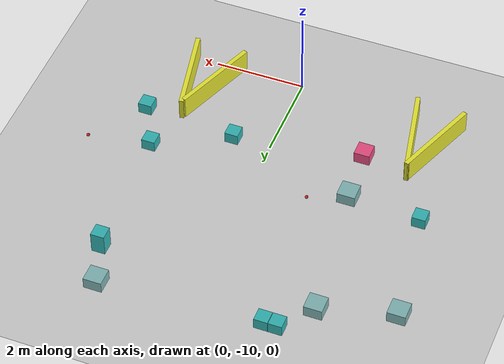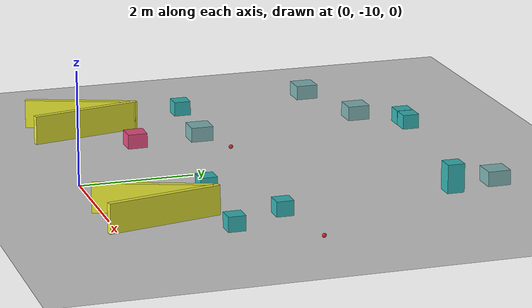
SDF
<sdf version="1.7">
 <world name="default">
  <model name="ground_plane">
   <static>1</static>
   <link name="link">
    <collision name="collision">
     <geometry><plane><normal>0 0 1</normal><size>100 100</size></plane></geometry>
     <surface><friction><ode><mu>100</mu><mu2>50</mu2></ode></friction></surface>
    </collision>
    <visual name="visual">
     <cast_shadows>0</cast_shadows>
     <geometry><plane><normal>0 0 1</normal><size>100 100</size></plane></geometry>
     <material>
      <script><uri>file://media/materials/scripts/gazebo.material</uri><name>Gazebo/Grey</name></script>
     </material>
    </visual>
   </link>
  </model>
  <model name="fl4sr_real_arena_8_target">
   <model name="target_ball_2">
    <link name="link">
     <pose>0 0 0.0375 0 -0 0</pose>
     <inertial>
      <mass>0.1467</mass>
      <inertia>
       <ixx>8.25187e-05</ixx>
       <ixy>0</ixy>
       <ixz>0</ixz>
       <iyy>8.25187e-05</iyy>
       <iyz>0</iyz>
       <izz>8.25187e-05</izz>
      </inertia>
     </inertial>
     <velocity_decay><linear>0</linear><angular>0.005</angular></velocity_decay>
     <visual name="visual">
      <geometry><sphere><radius>0.0375</radius></sphere></geometry>
      <material>
       <script><uri>file://media/materials/scripts/gazebo.material</uri><name>Gazebo/Red</name></script>
       <shader type="pixel"/>
      </material>
     </visual>
     <collision name="collision">
      <geometry><sphere><radius>0.0375</radius></sphere></geometry>
      <surface>
       <friction>
        <ode><mu>1</mu><mu2>1</mu2><fdir1>0 0 0</fdir1><slip1>0</slip1><slip2>0</slip2></ode>
        <torsional>
         <coefficient>1</coefficient>
         <patch_radius>0</patch_radius>
         <surface_radius>0.01</surface_radius>
         <use_patch_radius>0</use_patch_radius>
         <ode><slip>0</slip></ode>
        </torsional>
       </friction>
       <bounce><restitution_coefficient>0</restitution_coefficient><threshold>1e+06</threshold></bounce>
       <contact>
        <collide_without_contact>0</collide_without_contact>
        <collide_without_contact_bitmask>1</collide_without_contact_bitmask>
        <collide_bitmask>1</collide_bitmask>
        <ode>
         <soft_cfm>0</soft_cfm>
         <soft_erp>0.2</soft_erp>
         <kp>100000</kp>
         <kd>100</kd>
         <max_vel>100</max_vel>
         <min_depth>0.001</min_depth>
        </ode>
        <bullet>
         <split_impulse>1</split_impulse>
         <split_impulse_penetration_threshold>-0.01</split_impulse_penetration_threshold>
         <soft_cfm>0</soft_cfm>
         <soft_erp>0.2</soft_erp>
         <kp>100000</kp>
         <kd>100</kd>
        </bullet>
       </contact>
      </surface>
     </collision>
    </link>
    <static>0</static>
    <pose>2.0925 -7.77644 0 0 -0 0</pose>
   </model>
   <model name="target_ball_6">
    <link name="link">
     <pose>0 0 0.0375 0 -0 0</pose>
     <inertial>
      <mass>0.1467</mass>
      <inertia>
       <ixx>8.25187e-05</ixx>
       <ixy>0</ixy>
       <ixz>0</ixz>
       <iyy>8.25187e-05</iyy>
       <iyz>0</iyz>
       <izz>8.25187e-05</izz>
      </inertia>
     </inertial>
     <velocity_decay><linear>0</linear><angular>0.005</angular></velocity_decay>
     <visual name="visual">
      <geometry><sphere><radius>0.0375</radius></sphere></geometry>
      <material>
       <script><uri>file://media/materials/scripts/gazebo.material</uri><name>Gazebo/Red</name></script>
       <shader type="pixel"/>
      </material>
     </visual>
     <collision name="collision">
      <geometry><sphere><radius>0.0375</radius></sphere></geometry>
      <surface>
       <friction>
        <ode><mu>1</mu><mu2>1</mu2><fdir1>0 0 0</fdir1><slip1>0</slip1><slip2>0</slip2></ode>
        <torsional>
         <coefficient>1</coefficient>
         <patch_radius>0</patch_radius>
         <surface_radius>0.01</surface_radius>
         <use_patch_radius>0</use_patch_radius>
         <ode><slip>0</slip></ode>
        </torsional>
       </friction>
       <bounce><restitution_coefficient>0</restitution_coefficient><threshold>1e+06</threshold></bounce>
       <contact>
        <collide_without_contact>0</collide_without_contact>
        <collide_without_contact_bitmask>1</collide_without_contact_bitmask>
        <collide_bitmask>1</collide_bitmask>
        <ode>
         <soft_cfm>0</soft_cfm>
         <soft_erp>0.2</soft_erp>
         <kp>100000</kp>
         <kd>100</kd>
         <max_vel>100</max_vel>
         <min_depth>0.001</min_depth>
        </ode>
        <bullet>
         <split_impulse>1</split_impulse>
         <split_impulse_penetration_threshold>-0.01</split_impulse_penetration_threshold>
         <soft_cfm>0</soft_cfm>
         <soft_erp>0.2</soft_erp>
         <kp>100000</kp>
         <kd>100</kd>
        </bullet>
       </contact>
      </surface>
     </collision>
    </link>
    <static>0</static>
    <pose>-2.94744 -7.77192 0 0 -0 0</pose>
   </model>
   <static>0</static>
   <pose>1.69407 0.837479 0 0 -0 0</pose>
  </model>
  <model name="unit_box_0.4">
   <link name="link">
    <inertial>
     <mass>1</mass>
     <inertia>
      <ixx>0.166667</ixx>
      <ixy>0</ixy>
      <ixz>0</ixz>
      <iyy>0.166667</iyy>
      <iyz>0</iyz>
      <izz>0.166667</izz>
     </inertia>
    </inertial>
    <visual name="visual">
     <geometry><box><size>0.4 0.4 0.5</size></box></geometry>
     <material>
      <script><name>Gazebo/Grey</name><uri>file://media/materials/scripts/gazebo.material</uri></script>
      <shader type="pixel"><normal_map>__default__</normal_map></shader>
      <ambient>0.7 0.8 0.4 1</ambient>
      <diffuse>0.5 0.7 0.7 1</diffuse>
      <specular>0.01 0.01 0.01 1</specular>
      <emissive>0 0 0 1</emissive>
     </material>
    </visual>
    <collision name="collision">
     <geometry><box><size>0.4 0.4 0.5</size></box></geometry>
     <surface>
      <friction>
       <ode><mu>1</mu><mu2>1</mu2><fdir1>0 0 0</fdir1><slip1>0</slip1><slip2>0</slip2></ode>
       <torsional>
        <coefficient>1</coefficient>
        <patch_radius>0</patch_radius>
        <surface_radius>0</surface_radius>
        <use_patch_radius>1</use_patch_radius>
        <ode><slip>0</slip></ode>
       </torsional>
      </friction>
      <bounce><restitution_coefficient>0</restitution_coefficient><threshold>1e+06</threshold></bounce>
      <contact>
       <collide_without_contact>0</collide_without_contact>
       <collide_without_contact_bitmask>1</collide_without_contact_bitmask>
       <collide_bitmask>1</collide_bitmask>
       <ode>
        <soft_cfm>0</soft_cfm>
        <soft_erp>0.2</soft_erp>
        <kp>1e+13</kp>
        <kd>1</kd>
        <max_vel>0.01</max_vel>
        <min_depth>0</min_depth>
       </ode>
       <bullet>
        <split_impulse>1</split_impulse>
        <split_impulse_penetration_threshold>-0.01</split_impulse_penetration_threshold>
        <soft_cfm>0</soft_cfm>
        <soft_erp>0.2</soft_erp>
        <kp>1e+13</kp>
        <kd>1</kd>
       </bullet>
      </contact>
     </surface>
    </collision>
   </link>
   <static>0</static>
   <pose>1.92446 -3.23435 0 0 -0 0</pose>
  </model>
  <model name="unit_box_0.3">
   <link name="link">
    <inertial>
     <mass>1</mass>
     <inertia>
      <ixx>0.166667</ixx>
      <ixy>0</ixy>
      <ixz>0</ixz>
      <iyy>0.166667</iyy>
      <iyz>0</iyz>
      <izz>0.166667</izz>
     </inertia>
    </inertial>
    <visual name="visual">
     <geometry><box><size>0.3 0.3 0.5</size></box></geometry>
     <material>
      <script><name>Gazebo/Grey</name><uri>file://media/materials/scripts/gazebo.material</uri></script>
      <shader type="pixel"><normal_map>__default__</normal_map></shader>
      <ambient>0.2 0.7 0.7 1</ambient>
      <diffuse>0.7 0.7 0.7 1</diffuse>
      <specular>0.01 0.01 0.01 1</specular>
      <emissive>0 0 0 1</emissive>
     </material>
    </visual>
    <collision name="collision">
     <geometry><box><size>0.3 0.3 0.5</size></box></geometry>
     <surface>
      <friction>
       <ode><mu>1</mu><mu2>1</mu2><fdir1>0 0 0</fdir1><slip1>0</slip1><slip2>0</slip2></ode>
       <torsional>
        <coefficient>1</coefficient>
        <patch_radius>0</patch_radius>
        <surface_radius>0</surface_radius>
        <use_patch_radius>1</use_patch_radius>
        <ode><slip>0</slip></ode>
       </torsional>
      </friction>
      <bounce><restitution_coefficient>0</restitution_coefficient><threshold>1e+06</threshold></bounce>
      <contact>
       <collide_without_contact>0</collide_without_contact>
       <collide_without_contact_bitmask>1</collide_without_contact_bitmask>
       <collide_bitmask>1</collide_bitmask>
       <ode>
        <soft_cfm>0</soft_cfm>
        <soft_erp>0.2</soft_erp>
        <kp>1e+13</kp>
        <kd>1</kd>
        <max_vel>0.01</max_vel>
        <min_depth>0</min_depth>
       </ode>
       <bullet>
        <split_impulse>1</split_impulse>
        <split_impulse_penetration_threshold>-0.01</split_impulse_penetration_threshold>
        <soft_cfm>0</soft_cfm>
        <soft_erp>0.2</soft_erp>
        <kp>1e+13</kp>
        <kd>1</kd>
       </bullet>
      </contact>
     </surface>
    </collision>
   </link>
   <static>0</static>
   <pose>2.21344 -4.12023 0.271339 0 -0 0</pose>
  </model>
  <model name="wooden_wall_2">
   <link name="link_1">
    <inertial>
     <mass>1</mass>
     <inertia>
      <ixx>0.166667</ixx>
      <ixy>0</ixy>
      <ixz>0</ixz>
      <iyy>0.166667</iyy>
      <iyz>0</iyz>
      <izz>0.166667</izz>
     </inertia>
    </inertial>
    <visual name="visual">
     <geometry><box><size>2 0.1 1</size></box></geometry>
     <material>
      <lighting>1</lighting>
      <script><uri>file://media/materials/scripts/gazebo.material</uri><name>Gazebo/Grey</name></script>
      <shader type="pixel"><normal_map>__default__</normal_map></shader>
      <ambient>0.9 0.9 0.2 1</ambient>
      <diffuse>0.7 0.7 0.7 1</diffuse>
      <specular>0.01 0.01 0.01 1</specular>
      <emissive>0 0 0 1</emissive>
     </material>
    </visual>
    <collision name="collision">
     <geometry><box><size>2 0.1 1</size></box></geometry>
     <surface>
      <friction>
       <ode><mu>1</mu><mu2>1</mu2><fdir1>0 0 0</fdir1><slip1>0</slip1><slip2>0</slip2></ode>
       <torsional>
        <coefficient>1</coefficient>
        <patch_radius>0</patch_radius>
        <surface_radius>0</surface_radius>
        <use_patch_radius>1</use_patch_radius>
        <ode><slip>0</slip></ode>
       </torsional>
      </friction>
      <bounce><restitution_coefficient>0</restitution_coefficient><threshold>1e+06</threshold></bounce>
      <contact>
       <collide_without_contact>0</collide_without_contact>
       <collide_without_contact_bitmask>1</collide_without_contact_bitmask>
       <collide_bitmask>1</collide_bitmask>
       <ode>
        <soft_cfm>0</soft_cfm>
        <soft_erp>0.2</soft_erp>
        <kp>1e+13</kp>
        <kd>1</kd>
        <max_vel>0.01</max_vel>
        <min_depth>0</min_depth>
       </ode>
       <bullet>
        <split_impulse>1</split_impulse>
        <split_impulse_penetration_threshold>-0.01</split_impulse_penetration_threshold>
        <soft_cfm>0</soft_cfm>
        <soft_erp>0.2</soft_erp>
        <kp>1e+13</kp>
        <kd>1</kd>
       </bullet>
      </contact>
     </surface>
    </collision>
   </link>
   <static>0</static>
   <pose>1.74578 -9.1937 0 0 -0 1.21273</pose>
  </model>
  <model name="wooden_wall_2_clone">
   <link name="link_1">
    <inertial>
     <mass>1</mass>
     <inertia>
      <ixx>0.166667</ixx>
      <ixy>0</ixy>
      <ixz>0</ixz>
      <iyy>0.166667</iyy>
      <iyz>0</iyz>
      <izz>0.166667</izz>
     </inertia>
    </inertial>
    <visual name="visual">
     <geometry><box><size>2 0.1 1</size></box></geometry>
     <material>
      <lighting>1</lighting>
      <script><uri>file://media/materials/scripts/gazebo.material</uri><name>Gazebo/Grey</name></script>
      <shader type="pixel"><normal_map>__default__</normal_map></shader>
      <ambient>0.9 0.9 0.2 1</ambient>
      <diffuse>0.7 0.7 0.7 1</diffuse>
      <specular>0.01 0.01 0.01 1</specular>
      <emissive>0 0 0 1</emissive>
     </material>
    </visual>
    <collision name="collision">
     <geometry><box><size>2 0.1 1</size></box></geometry>
     <surface>
      <friction>
       <ode><mu>1</mu><mu2>1</mu2><fdir1>0 0 0</fdir1><slip1>0</slip1><slip2>0</slip2></ode>
       <torsional>
        <coefficient>1</coefficient>
        <patch_radius>0</patch_radius>
        <surface_radius>0</surface_radius>
        <use_patch_radius>1</use_patch_radius>
        <ode><slip>0</slip></ode>
       </torsional>
      </friction>
      <bounce><restitution_coefficient>0</restitution_coefficient><threshold>1e+06</threshold></bounce>
      <contact>
       <collide_without_contact>0</collide_without_contact>
       <collide_without_contact_bitmask>1</collide_without_contact_bitmask>
       <collide_bitmask>1</collide_bitmask>
       <ode>
        <soft_cfm>0</soft_cfm>
        <soft_erp>0.2</soft_erp>
        <kp>1e+13</kp>
        <kd>1</kd>
        <max_vel>0.01</max_vel>
        <min_depth>0</min_depth>
       </ode>
       <bullet>
        <split_impulse>1</split_impulse>
        <split_impulse_penetration_threshold>-0.01</split_impulse_penetration_threshold>
        <soft_cfm>0</soft_cfm>
        <soft_erp>0.2</soft_erp>
        <kp>1e+13</kp>
        <kd>1</kd>
       </bullet>
      </contact>
     </surface>
    </collision>
   </link>
   <static>0</static>
   <pose>2.3246 -9.15815 0 0 -0 1.77834</pose>
  </model>
  <model name="wooden_wall_2_clone_0">
   <link name="link_1">
    <inertial>
     <mass>1</mass>
     <inertia>
      <ixx>0.166667</ixx>
      <ixy>0</ixy>
      <ixz>0</ixz>
      <iyy>0.166667</iyy>
      <iyz>0</iyz>
      <izz>0.166667</izz>
     </inertia>
    </inertial>
    <visual name="visual">
     <geometry><box><size>2 0.1 1</size></box></geometry>
     <material>
      <lighting>1</lighting>
      <script><uri>file://media/materials/scripts/gazebo.material</uri><name>Gazebo/Grey</name></script>
      <shader type="pixel"><normal_map>__default__</normal_map></shader>
      <ambient>0.9 0.9 0.2 1</ambient>
      <diffuse>0.7 0.7 0.7 1</diffuse>
      <specular>0.01 0.01 0.01 1</specular>
      <emissive>0 0 0 1</emissive>
     </material>
    </visual>
    <collision name="collision">
     <geometry><box><size>2 0.1 1</size></box></geometry>
     <surface>
      <friction>
       <ode><mu>1</mu><mu2>1</mu2><fdir1>0 0 0</fdir1><slip1>0</slip1><slip2>0</slip2></ode>
       <torsional>
        <coefficient>1</coefficient>
        <patch_radius>0</patch_radius>
        <surface_radius>0</surface_radius>
        <use_patch_radius>1</use_patch_radius>
        <ode><slip>0</slip></ode>
       </torsional>
      </friction>
      <bounce><restitution_coefficient>0</restitution_coefficient><threshold>1e+06</threshold></bounce>
      <contact>
       <collide_without_contact>0</collide_without_contact>
       <collide_without_contact_bitmask>1</collide_without_contact_bitmask>
       <collide_bitmask>1</collide_bitmask>
       <ode>
        <soft_cfm>0</soft_cfm>
        <soft_erp>0.2</soft_erp>
        <kp>1e+13</kp>
        <kd>1</kd>
        <max_vel>0.01</max_vel>
        <min_depth>0</min_depth>
       </ode>
       <bullet>
        <split_impulse>1</split_impulse>
        <split_impulse_penetration_threshold>-0.01</split_impulse_penetration_threshold>
        <soft_cfm>0</soft_cfm>
        <soft_erp>0.2</soft_erp>
        <kp>1e+13</kp>
        <kd>1</kd>
       </bullet>
      </contact>
     </surface>
    </collision>
   </link>
   <static>0</static>
   <pose>-3.36404 -9.13299 0 0 -0 1.21273</pose>
  </model>
  <model name="wooden_wall_2_clone_clone">
   <link name="link_1">
    <inertial>
     <mass>1</mass>
     <inertia>
      <ixx>0.166667</ixx>
      <ixy>0</ixy>
      <ixz>0</ixz>
      <iyy>0.166667</iyy>
      <iyz>0</iyz>
      <izz>0.166667</izz>
     </inertia>
    </inertial>
    <visual name="visual">
     <geometry><box><size>2 0.1 1</size></box></geometry>
     <material>
      <lighting>1</lighting>
      <script><uri>file://media/materials/scripts/gazebo.material</uri><name>Gazebo/Grey</name></script>
      <shader type="pixel"><normal_map>__default__</normal_map></shader>
      <ambient>0.9 0.9 0.2 1</ambient>
      <diffuse>0.7 0.7 0.7 1</diffuse>
      <specular>0.01 0.01 0.01 1</specular>
      <emissive>0 0 0 1</emissive>
     </material>
    </visual>
    <collision name="collision">
     <geometry><box><size>2 0.1 1</size></box></geometry>
     <surface>
      <friction>
       <ode><mu>1</mu><mu2>1</mu2><fdir1>0 0 0</fdir1><slip1>0</slip1><slip2>0</slip2></ode>
       <torsional>
        <coefficient>1</coefficient>
        <patch_radius>0</patch_radius>
        <surface_radius>0</surface_radius>
        <use_patch_radius>1</use_patch_radius>
        <ode><slip>0</slip></ode>
       </torsional>
      </friction>
      <bounce><restitution_coefficient>0</restitution_coefficient><threshold>1e+06</threshold></bounce>
      <contact>
       <collide_without_contact>0</collide_without_contact>
       <collide_without_contact_bitmask>1</collide_without_contact_bitmask>
       <collide_bitmask>1</collide_bitmask>
       <ode>
        <soft_cfm>0</soft_cfm>
        <soft_erp>0.2</soft_erp>
        <kp>1e+13</kp>
        <kd>1</kd>
        <max_vel>0.01</max_vel>
        <min_depth>0</min_depth>
       </ode>
       <bullet>
        <split_impulse>1</split_impulse>
        <split_impulse_penetration_threshold>-0.01</split_impulse_penetration_threshold>
        <soft_cfm>0</soft_cfm>
        <soft_erp>0.2</soft_erp>
        <kp>1e+13</kp>
        <kd>1</kd>
       </bullet>
      </contact>
     </surface>
    </collision>
   </link>
   <static>0</static>
   <pose>-2.82757 -9.16398 0 0 -0 1.77834</pose>
  </model>
  <model name="unit_box_0.3_0_clone">
   <link name="link">
    <inertial>
     <mass>1</mass>
     <inertia>
      <ixx>0.166667</ixx>
      <ixy>0</ixy>
      <ixz>0</ixz>
      <iyy>0.166667</iyy>
      <iyz>0</iyz>
      <izz>0.166667</izz>
     </inertia>
    </inertial>
    <visual name="visual">
     <geometry><box><size>0.3 0.3 0.5</size></box></geometry>
     <material>
      <script><name>Gazebo/Grey</name><uri>file://media/materials/scripts/gazebo.material</uri></script>
      <shader type="pixel"><normal_map>__default__</normal_map></shader>
      <ambient>0.2 0.7 0.7 1</ambient>
      <diffuse>0.7 0.7 0.7 1</diffuse>
      <specular>0.01 0.01 0.01 1</specular>
      <emissive>0 0 0 1</emissive>
     </material>
    </visual>
    <collision name="collision">
     <geometry><box><size>0.3 0.3 0.5</size></box></geometry>
     <surface>
      <friction>
       <ode><mu>1</mu><mu2>1</mu2><fdir1>0 0 0</fdir1><slip1>0</slip1><slip2>0</slip2></ode>
       <torsional>
        <coefficient>1</coefficient>
        <patch_radius>0</patch_radius>
        <surface_radius>0</surface_radius>
        <use_patch_radius>1</use_patch_radius>
        <ode><slip>0</slip></ode>
       </torsional>
      </friction>
      <bounce><restitution_coefficient>0</restitution_coefficient><threshold>1e+06</threshold></bounce>
      <contact>
       <collide_without_contact>0</collide_without_contact>
       <collide_without_contact_bitmask>1</collide_without_contact_bitmask>
       <collide_bitmask>1</collide_bitmask>
       <ode>
        <soft_cfm>0</soft_cfm>
        <soft_erp>0.2</soft_erp>
        <kp>1e+13</kp>
        <kd>1</kd>
        <max_vel>0.01</max_vel>
        <min_depth>0</min_depth>
       </ode>
       <bullet>
        <split_impulse>1</split_impulse>
        <split_impulse_penetration_threshold>-0.01</split_impulse_penetration_threshold>
        <soft_cfm>0</soft_cfm>
        <soft_erp>0.2</soft_erp>
        <kp>1e+13</kp>
        <kd>1</kd>
       </bullet>
      </contact>
     </surface>
    </collision>
   </link>
   <static>0</static>
   <pose>-3.69696 -7.15807 0 0 -0 0</pose>
  </model>
  <model name="unit_box_0.4_clone">
   <link name="link">
    <inertial>
     <mass>1</mass>
     <inertia>
      <ixx>0.166667</ixx>
      <ixy>0</ixy>
      <ixz>0</ixz>
      <iyy>0.166667</iyy>
      <iyz>0</iyz>
      <izz>0.166667</izz>
     </inertia>
    </inertial>
    <visual name="visual">
     <geometry><box><size>0.4 0.4 0.5</size></box></geometry>
     <material>
      <script><name>Gazebo/Grey</name><uri>file://media/materials/scripts/gazebo.material</uri></script>
      <shader type="pixel"><normal_map>__default__</normal_map></shader>
      <ambient>0.7 0.8 0.4 1</ambient>
      <diffuse>0.5 0.7 0.7 1</diffuse>
      <specular>0.01 0.01 0.01 1</specular>
      <emissive>0 0 0 1</emissive>
     </material>
    </visual>
    <collision name="collision">
     <geometry><box><size>0.4 0.4 0.5</size></box></geometry>
     <surface>
      <friction>
       <ode><mu>1</mu><mu2>1</mu2><fdir1>0 0 0</fdir1><slip1>0</slip1><slip2>0</slip2></ode>
       <torsional>
        <coefficient>1</coefficient>
        <patch_radius>0</patch_radius>
        <surface_radius>0</surface_radius>
        <use_patch_radius>1</use_patch_radius>
        <ode><slip>0</slip></ode>
       </torsional>
      </friction>
      <bounce><restitution_coefficient>0</restitution_coefficient><threshold>1e+06</threshold></bounce>
      <contact>
       <collide_without_contact>0</collide_without_contact>
       <collide_without_contact_bitmask>1</collide_without_contact_bitmask>
       <collide_bitmask>1</collide_bitmask>
       <ode>
        <soft_cfm>0</soft_cfm>
        <soft_erp>0.2</soft_erp>
        <kp>1e+13</kp>
        <kd>1</kd>
        <max_vel>0.01</max_vel>
        <min_depth>0</min_depth>
       </ode>
       <bullet>
        <split_impulse>1</split_impulse>
        <split_impulse_penetration_threshold>-0.01</split_impulse_penetration_threshold>
        <soft_cfm>0</soft_cfm>
        <soft_erp>0.2</soft_erp>
        <kp>1e+13</kp>
        <kd>1</kd>
       </bullet>
      </contact>
     </surface>
    </collision>
   </link>
   <static>0</static>
   <pose>-2.06862 -7.27292 0 0 -0 0</pose>
  </model>
  <model name="unit_box_0.35_clone">
   <link name="link">
    <inertial>
     <mass>1</mass>
     <inertia>
      <ixx>0.166667</ixx>
      <ixy>0</ixy>
      <ixz>0</ixz>
      <iyy>0.166667</iyy>
      <iyz>0</iyz>
      <izz>0.166667</izz>
     </inertia>
    </inertial>
    <visual name="visual">
     <geometry><box><size>0.35 0.35 0.5</size></box></geometry>
     <material>
      <script><name>Gazebo/Grey</name><uri>file://media/materials/scripts/gazebo.material</uri></script>
      <shader type="pixel"><normal_map>__default__</normal_map></shader>
      <ambient>0.9 0.3 0.5 1</ambient>
      <diffuse>0.7 0.7 0.7 1</diffuse>
      <specular>0.01 0.01 0.01 1</specular>
      <emissive>0 0 0 1</emissive>
     </material>
    </visual>
    <collision name="collision">
     <geometry><box><size>0.35 0.35 0.5</size></box></geometry>
     <surface>
      <friction>
       <ode><mu>1</mu><mu2>1</mu2><fdir1>0 0 0</fdir1><slip1>0</slip1><slip2>0</slip2></ode>
       <torsional>
        <coefficient>1</coefficient>
        <patch_radius>0</patch_radius>
        <surface_radius>0</surface_radius>
        <use_patch_radius>1</use_patch_radius>
        <ode><slip>0</slip></ode>
       </torsional>
      </friction>
      <bounce><restitution_coefficient>0</restitution_coefficient><threshold>1e+06</threshold></bounce>
      <contact>
       <collide_without_contact>0</collide_without_contact>
       <collide_without_contact_bitmask>1</collide_without_contact_bitmask>
       <collide_bitmask>1</collide_bitmask>
       <ode>
        <soft_cfm>0</soft_cfm>
        <soft_erp>0.2</soft_erp>
        <kp>1e+13</kp>
        <kd>1</kd>
        <max_vel>0.01</max_vel>
        <min_depth>0</min_depth>
       </ode>
       <bullet>
        <split_impulse>1</split_impulse>
        <split_impulse_penetration_threshold>-0.01</split_impulse_penetration_threshold>
        <soft_cfm>0</soft_cfm>
        <soft_erp>0.2</soft_erp>
        <kp>1e+13</kp>
        <kd>1</kd>
       </bullet>
      </contact>
     </surface>
    </collision>
   </link>
   <static>0</static>
   <pose>-1.98306 -8.48224 0 0 -0 0</pose>
  </model>
  <model name="unit_box_0.4_clone_3_clone">
   <link name="link">
    <inertial>
     <mass>1</mass>
     <inertia>
      <ixx>0.166667</ixx>
      <ixy>0</ixy>
      <ixz>0</ixz>
      <iyy>0.166667</iyy>
      <iyz>0</iyz>
      <izz>0.166667</izz>
     </inertia>
    </inertial>
    <visual name="visual">
     <geometry><box><size>0.4 0.4 0.5</size></box></geometry>
     <material>
      <script><name>Gazebo/Grey</name><uri>file://media/materials/scripts/gazebo.material</uri></script>
      <shader type="pixel"><normal_map>__default__</normal_map></shader>
      <ambient>0.7 0.8 0.4 1</ambient>
      <diffuse>0.5 0.7 0.7 1</diffuse>
      <specular>0.01 0.01 0.01 1</specular>
      <emissive>0 0 0 1</emissive>
     </material>
    </visual>
    <collision name="collision">
     <geometry><box><size>0.4 0.4 0.5</size></box></geometry>
     <surface>
      <friction>
       <ode><mu>1</mu><mu2>1</mu2><fdir1>0 0 0</fdir1><slip1>0</slip1><slip2>0</slip2></ode>
       <torsional>
        <coefficient>1</coefficient>
        <patch_radius>0</patch_radius>
        <surface_radius>0</surface_radius>
        <use_patch_radius>1</use_patch_radius>
        <ode><slip>0</slip></ode>
       </torsional>
      </friction>
      <bounce><restitution_coefficient>0</restitution_coefficient><threshold>1e+06</threshold></bounce>
      <contact>
       <collide_without_contact>0</collide_without_contact>
       <collide_without_contact_bitmask>1</collide_without_contact_bitmask>
       <collide_bitmask>1</collide_bitmask>
       <ode>
        <soft_cfm>0</soft_cfm>
        <soft_erp>0.2</soft_erp>
        <kp>1e+13</kp>
        <kd>1</kd>
        <max_vel>0.01</max_vel>
        <min_depth>0</min_depth>
       </ode>
       <bullet>
        <split_impulse>1</split_impulse>
        <split_impulse_penetration_threshold>-0.01</split_impulse_penetration_threshold>
        <soft_cfm>0</soft_cfm>
        <soft_erp>0.2</soft_erp>
        <kp>1e+13</kp>
        <kd>1</kd>
       </bullet>
      </contact>
     </surface>
    </collision>
   </link>
   <static>0</static>
   <pose>-2.49257 -4.15986 0 0 -0 0</pose>
  </model>
  <model name="unit_box_0.4_clone_3_clone_0">
   <link name="link">
    <inertial>
     <mass>1</mass>
     <inertia>
      <ixx>0.166667</ixx>
      <ixy>0</ixy>
      <ixz>0</ixz>
      <iyy>0.166667</iyy>
      <iyz>0</iyz>
      <izz>0.166667</izz>
     </inertia>
    </inertial>
    <visual name="visual">
     <geometry><box><size>0.4 0.4 0.5</size></box></geometry>
     <material>
      <script><name>Gazebo/Grey</name><uri>file://media/materials/scripts/gazebo.material</uri></script>
      <shader type="pixel"><normal_map>__default__</normal_map></shader>
      <ambient>0.7 0.8 0.4 1</ambient>
      <diffuse>0.5 0.7 0.7 1</diffuse>
      <specular>0.01 0.01 0.01 1</specular>
      <emissive>0 0 0 1</emissive>
     </material>
    </visual>
    <collision name="collision">
     <geometry><box><size>0.4 0.4 0.5</size></box></geometry>
     <surface>
      <friction>
       <ode><mu>1</mu><mu2>1</mu2><fdir1>0 0 0</fdir1><slip1>0</slip1><slip2>0</slip2></ode>
       <torsional>
        <coefficient>1</coefficient>
        <patch_radius>0</patch_radius>
        <surface_radius>0</surface_radius>
        <use_patch_radius>1</use_patch_radius>
        <ode><slip>0</slip></ode>
       </torsional>
      </friction>
      <bounce><restitution_coefficient>0</restitution_coefficient><threshold>1e+06</threshold></bounce>
      <contact>
       <collide_without_contact>0</collide_without_contact>
       <collide_without_contact_bitmask>1</collide_without_contact_bitmask>
       <collide_bitmask>1</collide_bitmask>
       <ode>
        <soft_cfm>0</soft_cfm>
        <soft_erp>0.2</soft_erp>
        <kp>1e+13</kp>
        <kd>1</kd>
        <max_vel>0.01</max_vel>
        <min_depth>0</min_depth>
       </ode>
       <bullet>
        <split_impulse>1</split_impulse>
        <split_impulse_penetration_threshold>-0.01</split_impulse_penetration_threshold>
        <soft_cfm>0</soft_cfm>
        <soft_erp>0.2</soft_erp>
        <kp>1e+13</kp>
        <kd>1</kd>
       </bullet>
      </contact>
     </surface>
    </collision>
   </link>
   <static>0</static>
   <pose>-4.09964 -4.61907 0 0 -0 0</pose>
  </model>
  <model name="unit_box_0.3_1_clone_clone_0_clone">
   <link name="link">
    <inertial>
     <mass>1</mass>
     <inertia>
      <ixx>0.166667</ixx>
      <ixy>0</ixy>
      <ixz>0</ixz>
      <iyy>0.166667</iyy>
      <iyz>0</iyz>
      <izz>0.166667</izz>
     </inertia>
    </inertial>
    <visual name="visual">
     <geometry><box><size>0.3 0.3 0.5</size></box></geometry>
     <material>
      <script><name>Gazebo/Grey</name><uri>file://media/materials/scripts/gazebo.material</uri></script>
      <shader type="pixel"><normal_map>__default__</normal_map></shader>
      <ambient>0.2 0.7 0.7 1</ambient>
      <diffuse>0.7 0.7 0.7 1</diffuse>
      <specular>0.01 0.01 0.01 1</specular>
      <emissive>0 0 0 1</emissive>
     </material>
    </visual>
    <collision name="collision">
     <geometry><box><size>0.3 0.3 0.5</size></box></geometry>
     <surface>
      <friction>
       <ode><mu>1</mu><mu2>1</mu2><fdir1>0 0 0</fdir1><slip1>0</slip1><slip2>0</slip2></ode>
       <torsional>
        <coefficient>1</coefficient>
        <patch_radius>0</patch_radius>
        <surface_radius>0</surface_radius>
        <use_patch_radius>1</use_patch_radius>
        <ode><slip>0</slip></ode>
       </torsional>
      </friction>
      <bounce><restitution_coefficient>0</restitution_coefficient><threshold>1e+06</threshold></bounce>
      <contact>
       <collide_without_contact>0</collide_without_contact>
       <collide_without_contact_bitmask>1</collide_without_contact_bitmask>
       <collide_bitmask>1</collide_bitmask>
       <ode>
        <soft_cfm>0</soft_cfm>
        <soft_erp>0.2</soft_erp>
        <kp>1e+13</kp>
        <kd>1</kd>
        <max_vel>0.01</max_vel>
        <min_depth>0</min_depth>
       </ode>
       <bullet>
        <split_impulse>1</split_impulse>
        <split_impulse_penetration_threshold>-0.01</split_impulse_penetration_threshold>
        <soft_cfm>0</soft_cfm>
        <soft_erp>0.2</soft_erp>
        <kp>1e+13</kp>
        <kd>1</kd>
       </bullet>
      </contact>
     </surface>
    </collision>
   </link>
   <static>0</static>
   <pose>-1.93774 -3.45205 0 0 -0 0</pose>
  </model>
  <model name="unit_box_0.3_1_clone_clone_0_clone_0">
   <link name="link">
    <inertial>
     <mass>1</mass>
     <inertia>
      <ixx>0.166667</ixx>
      <ixy>0</ixy>
      <ixz>0</ixz>
      <iyy>0.166667</iyy>
      <iyz>0</iyz>
      <izz>0.166667</izz>
     </inertia>
    </inertial>
    <visual name="visual">
     <geometry><box><size>0.3 0.3 0.5</size></box></geometry>
     <material>
      <script><name>Gazebo/Grey</name><uri>file://media/materials/scripts/gazebo.material</uri></script>
      <shader type="pixel"><normal_map>__default__</normal_map></shader>
      <ambient>0.2 0.7 0.7 1</ambient>
      <diffuse>0.7 0.7 0.7 1</diffuse>
      <specular>0.01 0.01 0.01 1</specular>
      <emissive>0 0 0 1</emissive>
     </material>
    </visual>
    <collision name="collision">
     <geometry><box><size>0.3 0.3 0.5</size></box></geometry>
     <surface>
      <friction>
       <ode><mu>1</mu><mu2>1</mu2><fdir1>0 0 0</fdir1><slip1>0</slip1><slip2>0</slip2></ode>
       <torsional>
        <coefficient>1</coefficient>
        <patch_radius>0</patch_radius>
        <surface_radius>0</surface_radius>
        <use_patch_radius>1</use_patch_radius>
        <ode><slip>0</slip></ode>
       </torsional>
      </friction>
      <bounce><restitution_coefficient>0</restitution_coefficient><threshold>1e+06</threshold></bounce>
      <contact>
       <collide_without_contact>0</collide_without_contact>
       <collide_without_contact_bitmask>1</collide_without_contact_bitmask>
       <collide_bitmask>1</collide_bitmask>
       <ode>
        <soft_cfm>0</soft_cfm>
        <soft_erp>0.2</soft_erp>
        <kp>1e+13</kp>
        <kd>1</kd>
        <max_vel>0.01</max_vel>
        <min_depth>0</min_depth>
       </ode>
       <bullet>
        <split_impulse>1</split_impulse>
        <split_impulse_penetration_threshold>-0.01</split_impulse_penetration_threshold>
        <soft_cfm>0</soft_cfm>
        <soft_erp>0.2</soft_erp>
        <kp>1e+13</kp>
        <kd>1</kd>
       </bullet>
      </contact>
     </surface>
    </collision>
   </link>
   <static>0</static>
   <pose>-1.63163 -3.45205 0 0 -0 0</pose>
  </model>
  <model name="unit_box_0.3_1_clone_clone_0_clone_1">
   <link name="link">
    <inertial>
     <mass>1</mass>
     <inertia>
      <ixx>0.166667</ixx>
      <ixy>0</ixy>
      <ixz>0</ixz>
      <iyy>0.166667</iyy>
      <iyz>0</iyz>
      <izz>0.166667</izz>
     </inertia>
    </inertial>
    <visual name="visual">
     <geometry><box><size>0.3 0.3 0.5</size></box></geometry>
     <material>
      <script><name>Gazebo/Grey</name><uri>file://media/materials/scripts/gazebo.material</uri></script>
      <shader type="pixel"><normal_map>__default__</normal_map></shader>
      <ambient>0.2 0.7 0.7 1</ambient>
      <diffuse>0.7 0.7 0.7 1</diffuse>
      <specular>0.01 0.01 0.01 1</specular>
      <emissive>0 0 0 1</emissive>
     </material>
    </visual>
    <collision name="collision">
     <geometry><box><size>0.3 0.3 0.5</size></box></geometry>
     <surface>
      <friction>
       <ode><mu>1</mu><mu2>1</mu2><fdir1>0 0 0</fdir1><slip1>0</slip1><slip2>0</slip2></ode>
       <torsional>
        <coefficient>1</coefficient>
        <patch_radius>0</patch_radius>
        <surface_radius>0</surface_radius>
        <use_patch_radius>1</use_patch_radius>
        <ode><slip>0</slip></ode>
       </torsional>
      </friction>
      <bounce><restitution_coefficient>0</restitution_coefficient><threshold>1e+06</threshold></bounce>
      <contact>
       <collide_without_contact>0</collide_without_contact>
       <collide_without_contact_bitmask>1</collide_without_contact_bitmask>
       <collide_bitmask>1</collide_bitmask>
       <ode>
        <soft_cfm>0</soft_cfm>
        <soft_erp>0.2</soft_erp>
        <kp>1e+13</kp>
        <kd>1</kd>
        <max_vel>0.01</max_vel>
        <min_depth>0</min_depth>
       </ode>
       <bullet>
        <split_impulse>1</split_impulse>
        <split_impulse_penetration_threshold>-0.01</split_impulse_penetration_threshold>
        <soft_cfm>0</soft_cfm>
        <soft_erp>0.2</soft_erp>
        <kp>1e+13</kp>
        <kd>1</kd>
       </bullet>
      </contact>
     </surface>
    </collision>
   </link>
   <static>0</static>
   <pose>0.832713 -8.00783 0 0 -0 0</pose>
  </model>
  <model name="unit_box_0.3_1_clone_clone_0_clone_2">
   <link name="link">
    <inertial>
     <mass>1</mass>
     <inertia>
      <ixx>0.166667</ixx>
      <ixy>0</ixy>
      <ixz>0</ixz>
      <iyy>0.166667</iyy>
      <iyz>0</iyz>
      <izz>0.166667</izz>
     </inertia>
    </inertial>
    <visual name="visual">
     <geometry><box><size>0.3 0.3 0.5</size></box></geometry>
     <material>
      <script><name>Gazebo/Grey</name><uri>file://media/materials/scripts/gazebo.material</uri></script>
      <shader type="pixel"><normal_map>__default__</normal_map></shader>
      <ambient>0.2 0.7 0.7 1</ambient>
      <diffuse>0.7 0.7 0.7 1</diffuse>
      <specular>0.01 0.01 0.01 1</specular>
      <emissive>0 0 0 1</emissive>
     </material>
    </visual>
    <collision name="collision">
     <geometry><box><size>0.3 0.3 0.5</size></box></geometry>
     <surface>
      <friction>
       <ode><mu>1</mu><mu2>1</mu2><fdir1>0 0 0</fdir1><slip1>0</slip1><slip2>0</slip2></ode>
       <torsional>
        <coefficient>1</coefficient>
        <patch_radius>0</patch_radius>
        <surface_radius>0</surface_radius>
        <use_patch_radius>1</use_patch_radius>
        <ode><slip>0</slip></ode>
       </torsional>
      </friction>
      <bounce><restitution_coefficient>0</restitution_coefficient><threshold>1e+06</threshold></bounce>
      <contact>
       <collide_without_contact>0</collide_without_contact>
       <collide_without_contact_bitmask>1</collide_without_contact_bitmask>
       <collide_bitmask>1</collide_bitmask>
       <ode>
        <soft_cfm>0</soft_cfm>
        <soft_erp>0.2</soft_erp>
        <kp>1e+13</kp>
        <kd>1</kd>
        <max_vel>0.01</max_vel>
        <min_depth>0</min_depth>
       </ode>
       <bullet>
        <split_impulse>1</split_impulse>
        <split_impulse_penetration_threshold>-0.01</split_impulse_penetration_threshold>
        <soft_cfm>0</soft_cfm>
        <soft_erp>0.2</soft_erp>
        <kp>1e+13</kp>
        <kd>1</kd>
       </bullet>
      </contact>
     </surface>
    </collision>
   </link>
   <static>0</static>
   <pose>2.91813 -8.16096 0 0 -0 0</pose>
  </model>
  <model name="unit_box_0.3_1_clone_clone_0_clone_3">
   <link name="link">
    <inertial>
     <mass>1</mass>
     <inertia>
      <ixx>0.166667</ixx>
      <ixy>0</ixy>
      <ixz>0</ixz>
      <iyy>0.166667</iyy>
      <iyz>0</iyz>
      <izz>0.166667</izz>
     </inertia>
    </inertial>
    <visual name="visual">
     <geometry><box><size>0.3 0.3 0.5</size></box></geometry>
     <material>
      <script><name>Gazebo/Grey</name><uri>file://media/materials/scripts/gazebo.material</uri></script>
      <shader type="pixel"><normal_map>__default__</normal_map></shader>
      <ambient>0.2 0.7 0.7 1</ambient>
      <diffuse>0.7 0.7 0.7 1</diffuse>
      <specular>0.01 0.01 0.01 1</specular>
      <emissive>0 0 0 1</emissive>
     </material>
    </visual>
    <collision name="collision">
     <geometry><box><size>0.3 0.3 0.5</size></box></geometry>
     <surface>
      <friction>
       <ode><mu>1</mu><mu2>1</mu2><fdir1>0 0 0</fdir1><slip1>0</slip1><slip2>0</slip2></ode>
       <torsional>
        <coefficient>1</coefficient>
        <patch_radius>0</patch_radius>
        <surface_radius>0</surface_radius>
        <use_patch_radius>1</use_patch_radius>
        <ode><slip>0</slip></ode>
       </torsional>
      </friction>
      <bounce><restitution_coefficient>0</restitution_coefficient><threshold>1e+06</threshold></bounce>
      <contact>
       <collide_without_contact>0</collide_without_contact>
       <collide_without_contact_bitmask>1</collide_without_contact_bitmask>
       <collide_bitmask>1</collide_bitmask>
       <ode>
        <soft_cfm>0</soft_cfm>
        <soft_erp>0.2</soft_erp>
        <kp>1e+13</kp>
        <kd>1</kd>
        <max_vel>0.01</max_vel>
        <min_depth>0</min_depth>
       </ode>
       <bullet>
        <split_impulse>1</split_impulse>
        <split_impulse_penetration_threshold>-0.01</split_impulse_penetration_threshold>
        <soft_cfm>0</soft_cfm>
        <soft_erp>0.2</soft_erp>
        <kp>1e+13</kp>
        <kd>1</kd>
       </bullet>
      </contact>
     </surface>
    </collision>
   </link>
   <static>0</static>
   <pose>2.4207 -7.18529 0 0 -0 0</pose>
  </model>
 </world>
</sdf>
